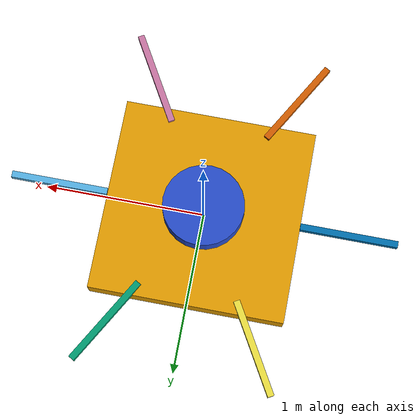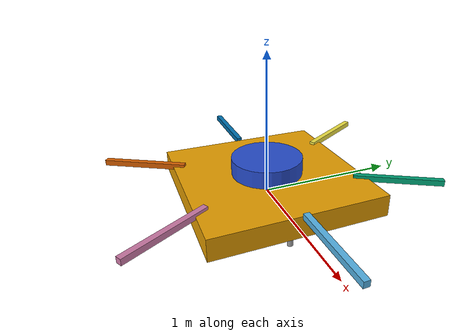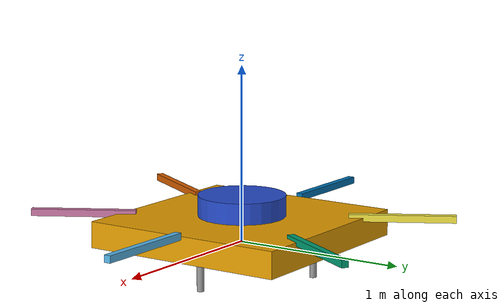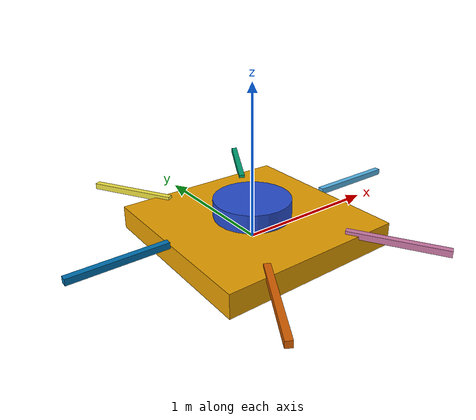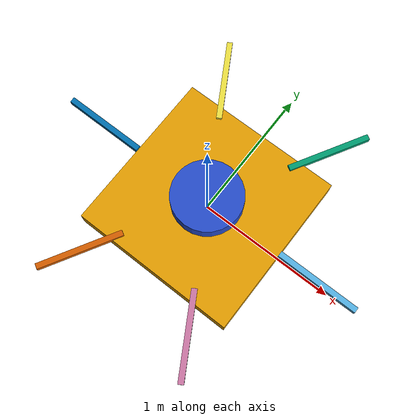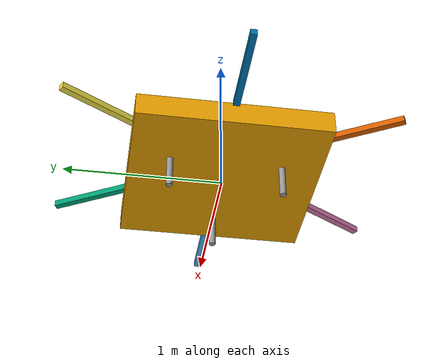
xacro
<?xml version="1.0"?>
<robot xmlns:xacro="http://www.ros.org/wiki/xacro">

    <!-- Constant declaration -->
    <xacro:property name="M_PI" value="3.1415926535897931" />
    <xacro:property name="base_length" value="1.2" />  <!-- values in meters -->
    <xacro:property name="base_width" value="1.2" />
    <xacro:property name="base_height" value="0.15" />
    <xacro:property name="arm_length" value="0.6" />
    <xacro:property name="arm_thickness" value="0.04" />

    <!-- Main Base Link -->
    <link name="base_link">
        <visual>
            <geometry>
                <box size="${base_length} ${base_width} ${base_height}" />
            </geometry>
            <origin xyz="0 0 ${base_height/2}" rpy="0 0 0" />
            <material name="carbon_fiber" />
        </visual>

        <collision>
            <geometry>
                <box size="${base_length} ${base_width} ${base_height}" />
            </geometry>
            <origin xyz="0 0 ${base_height/2}" rpy="0 0 0" />
        </collision>

        <inertial>
            <mass value="5.0" />
            <origin xyz="0 0 ${base_height/2}" />
            <inertia
                ixx="${(mass/12) * (base_width**2 + base_height**2)}"
                iyy="${(mass/12) * (base_length**2 + base_height**2)}"
                izz="${(mass/12) * (base_length**2 + base_width**2)}"
                ixy="0" ixz="0" iyz="0" />
        </inertial>
    </link>

    <!-- Hexagonal Arms (6x) -->
    <xacro:macro name="hexacopter_arm" params="arm_id angle">
        <link name="arm_${arm_id}">
            <visual>
                <geometry>
                    <box size="${arm_length} ${arm_thickness} ${arm_thickness}" />
                </geometry>
                <origin xyz="${arm_length/2} 0 0" rpy="0 0 0" />
                <material name="carbon_fiber" />
            </visual>
            <collision>
                <geometry>
                    <box size="${arm_length} ${arm_thickness} ${arm_thickness}" />
                </geometry>
                <origin xyz="${arm_length/2} 0 0" rpy="0 0 0" />
            </collision>
            <inertial>
                <mass value="0.5" />
                <origin xyz="${arm_length/2} 0 0" />
                <inertia
                    ixx="0.001" iyy="0.1" izz="0.1"
                    ixy="0" ixz="0" iyz="0" />
            </inertial>
        </link>

        <joint name="arm_${arm_id}_joint" type="fixed">
            <parent link="base_link" />
            <child link="arm_${arm_id}" />
            <origin xyz="${cos(angle)*base_length/2} ${sin(angle)*base_width/2} ${base_height}"
                rpy="0 0 ${angle}" />
        </joint>
    </xacro:macro>

    <!-- 6 arms at 60° intervals -->
    <xacro:hexacopter_arm arm_id="1" angle="${0 * M_PI/3}" />
    <xacro:hexacopter_arm arm_id="2" angle="${1 * M_PI/3}" />
    <xacro:hexacopter_arm arm_id="3" angle="${2 * M_PI/3}" />
    <xacro:hexacopter_arm arm_id="4" angle="${3 * M_PI/3}" />
    <xacro:hexacopter_arm arm_id="5" angle="${4 * M_PI/3}" />
    <xacro:hexacopter_arm arm_id="6" angle="${5 * M_PI/3}" />

    <!-- Landing Gear -->
    <xacro:macro name="landing_gear" params="prefix x y">
        <link name="${prefix}_landing_gear">
            <visual>
                <geometry>
                    <cylinder radius="0.02" length="0.2" />
                </geometry>
                <origin xyz="0 0 -0.1" rpy="0 0 0" />
                <material name="carbon_fiber" />
            </visual>
            <collision>
                <geometry>
                    <cylinder radius="0.02" length="0.2" />
                </geometry>
                <origin xyz="0 0 -0.1" rpy="0 0 0" />
            </collision>
            <inertial>
                <mass value="0.2" />
                <origin xyz="0 0 -0.1" />
                <inertia ixx="0.001" iyy="0.001" izz="0.0001" ixy="0" ixz="0" iyz="0" />
            </inertial>
        </link>

        <joint name="${prefix}_landing_gear_joint" type="fixed">
            <parent link="base_link" />
            <child link="${prefix}_landing_gear" />
            <origin xyz="${x} ${y} 0" rpy="0 0 0" />
        </joint>

        <!-- Gazebo properties for shock absorption -->
        <gazebo reference="${prefix}_landing_gear">
            <mu1>1.0</mu1>
            <mu2>1.0</mu2>
            <kp>100000</kp>
            <kd>1000</kd>
            <material>Gazebo/Grey</material>
        </gazebo>
    </xacro:macro>

    <!-- Triple landing gear (tripod configuration) -->
    <xacro:landing_gear prefix="front" x="0.4" y="0" />
    <xacro:landing_gear prefix="left" x="-0.2" y="0.35" />
    <xacro:landing_gear prefix="right" x="-0.2" y="-0.35" />

    <!-- Central Electronics Bay -->
    <link name="electronics_bay">
        <visual>
            <geometry>
                <cylinder radius="0.25" length="0.12" />
            </geometry>
            <origin xyz="0 0 0.06" rpy="0 0 0" />
            <material name="blue_body" />
        </visual>
        <collision>
            <geometry>
                <cylinder radius="0.25" length="0.12" />
            </geometry>
            <origin xyz="0 0 0.06" rpy="0 0 0" />
        </collision>
        <inertial>
            <mass value="1.5" />
            <origin xyz="0 0 0" />
            <inertia ixx="0.05" iyy="0.05" izz="0.09" ixy="0" ixz="0" iyz="0" />
        </inertial>
    </link>

    <joint name="electronics_bay_joint" type="fixed">
        <parent link="base_link" />
        <child link="electronics_bay" />
        <origin xyz="0 0 ${base_height}" rpy="0 0 0" />
    </joint>

    <!-- Gazebo plugins for base link -->
    <gazebo reference="base_link">
        <turnGravityOff>false</turnGravityOff>
        <selfCollide>false</selfCollide>
        <mu1>0.3</mu1>
        <mu2>0.3</mu2>
    </gazebo>
</robot>
